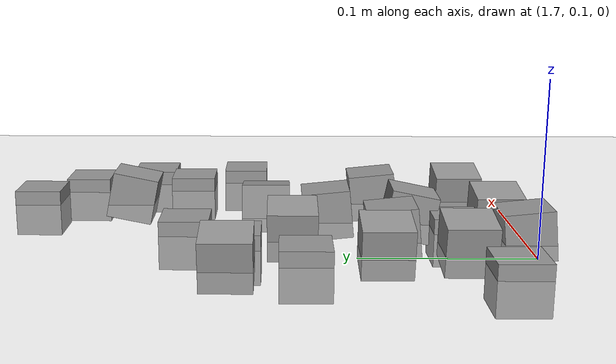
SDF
<sdf version="1.7">
 <world name="default">
  <model name="ground_plane">
   <static>1</static>
   <link name="link">
    <collision name="collision">
     <geometry><plane><normal>0 0 1</normal><size>100 100</size></plane></geometry>
     <surface><friction><ode><mu>100</mu><mu2>50</mu2></ode></friction></surface>
    </collision>
    <visual name="visual">
     <cast_shadows>0</cast_shadows>
     <geometry><plane><normal>0 0 1</normal><size>100 100</size></plane></geometry>
     <material>
      <script><uri>file://media/materials/scripts/gazebo.material</uri><name>Gazebo/Grey</name></script>
     </material>
    </visual>
   </link>
  </model>
  <model name="stone_road">
   <link name="link_0_clone_2_clone_2">
    <inertial>
     <mass>1</mass>
     <inertia>
      <ixx>0.166667</ixx>
      <ixy>0</ixy>
      <ixz>0</ixz>
      <iyy>0.166667</iyy>
      <iyz>0</iyz>
      <izz>0.166667</izz>
     </inertia>
    </inertial>
    <pose>0.066563 0.110568 0.003778 0 -0.15 0</pose>
    <kinematic>1</kinematic>
    <visual name="visual">
     <geometry><box><size>0.03 0.03 0.03</size></box></geometry>
     <material>
      <lighting>1</lighting>
      <script><uri>file://media/materials/scripts/gazebo.material</uri><name>Gazebo/Grey</name></script>
      <shader type="pixel"><normal_map>__default__</normal_map></shader>
      <ambient>0.3 0.3 0.3 1</ambient>
      <diffuse>0.7 0.7 0.7 1</diffuse>
      <specular>0.01 0.01 0.01 1</specular>
      <emissive>0 0 0 1</emissive>
     </material>
    </visual>
    <collision name="collision">
     <geometry><box><size>0.03 0.03 0.03</size></box></geometry>
     <surface>
      <friction>
       <ode><mu>1</mu><mu2>1</mu2><fdir1>0 0 0</fdir1><slip1>0</slip1><slip2>0</slip2></ode>
       <torsional>
        <coefficient>1</coefficient>
        <patch_radius>0</patch_radius>
        <surface_radius>0</surface_radius>
        <use_patch_radius>1</use_patch_radius>
        <ode><slip>0</slip></ode>
       </torsional>
      </friction>
      <bounce><restitution_coefficient>0</restitution_coefficient><threshold>1e+06</threshold></bounce>
      <contact>
       <collide_without_contact>0</collide_without_contact>
       <collide_without_contact_bitmask>1</collide_without_contact_bitmask>
       <collide_bitmask>1</collide_bitmask>
       <ode>
        <soft_cfm>0</soft_cfm>
        <soft_erp>0.2</soft_erp>
        <kp>1e+13</kp>
        <kd>1</kd>
        <max_vel>0.01</max_vel>
        <min_depth>0</min_depth>
       </ode>
       <bullet>
        <split_impulse>1</split_impulse>
        <split_impulse_penetration_threshold>-0.01</split_impulse_penetration_threshold>
        <soft_cfm>0</soft_cfm>
        <soft_erp>0.2</soft_erp>
        <kp>1e+13</kp>
        <kd>1</kd>
       </bullet>
      </contact>
     </surface>
    </collision>
   </link>
   <link name="link_0_clone_2_clone_2_clone">
    <inertial>
     <mass>1</mass>
     <inertia>
      <ixx>0.166667</ixx>
      <ixy>0</ixy>
      <ixz>0</ixz>
      <iyy>0.166667</iyy>
      <iyz>0</iyz>
      <izz>0.166667</izz>
     </inertia>
    </inertial>
    <pose>0.189059 0.051135 0.003778 0 -0.15 0</pose>
    <kinematic>1</kinematic>
    <visual name="visual">
     <geometry><box><size>0.03 0.03 0.03</size></box></geometry>
     <material>
      <lighting>1</lighting>
      <script><uri>file://media/materials/scripts/gazebo.material</uri><name>Gazebo/Grey</name></script>
      <shader type="pixel"><normal_map>__default__</normal_map></shader>
      <ambient>0.3 0.3 0.3 1</ambient>
      <diffuse>0.7 0.7 0.7 1</diffuse>
      <specular>0.01 0.01 0.01 1</specular>
      <emissive>0 0 0 1</emissive>
     </material>
    </visual>
    <collision name="collision">
     <geometry><box><size>0.03 0.03 0.03</size></box></geometry>
     <surface>
      <friction>
       <ode><mu>1</mu><mu2>1</mu2><fdir1>0 0 0</fdir1><slip1>0</slip1><slip2>0</slip2></ode>
       <torsional>
        <coefficient>1</coefficient>
        <patch_radius>0</patch_radius>
        <surface_radius>0</surface_radius>
        <use_patch_radius>1</use_patch_radius>
        <ode><slip>0</slip></ode>
       </torsional>
      </friction>
      <bounce><restitution_coefficient>0</restitution_coefficient><threshold>1e+06</threshold></bounce>
      <contact>
       <collide_without_contact>0</collide_without_contact>
       <collide_without_contact_bitmask>1</collide_without_contact_bitmask>
       <collide_bitmask>1</collide_bitmask>
       <ode>
        <soft_cfm>0</soft_cfm>
        <soft_erp>0.2</soft_erp>
        <kp>1e+13</kp>
        <kd>1</kd>
        <max_vel>0.01</max_vel>
        <min_depth>0</min_depth>
       </ode>
       <bullet>
        <split_impulse>1</split_impulse>
        <split_impulse_penetration_threshold>-0.01</split_impulse_penetration_threshold>
        <soft_cfm>0</soft_cfm>
        <soft_erp>0.2</soft_erp>
        <kp>1e+13</kp>
        <kd>1</kd>
       </bullet>
      </contact>
     </surface>
    </collision>
   </link>
   <link name="link_0_clone_2_clone_2_clone_10">
    <inertial>
     <mass>1</mass>
     <inertia>
      <ixx>0.166667</ixx>
      <ixy>0</ixy>
      <ixz>0</ixz>
      <iyy>0.166667</iyy>
      <iyz>0</iyz>
      <izz>0.166667</izz>
     </inertia>
    </inertial>
    <pose>0.09869 0.163436 0.003778 0 -0.15 0</pose>
    <kinematic>1</kinematic>
    <visual name="visual">
     <geometry><box><size>0.03 0.03 0.03</size></box></geometry>
     <material>
      <lighting>1</lighting>
      <script><uri>file://media/materials/scripts/gazebo.material</uri><name>Gazebo/Grey</name></script>
      <shader type="pixel"><normal_map>__default__</normal_map></shader>
      <ambient>0.3 0.3 0.3 1</ambient>
      <diffuse>0.7 0.7 0.7 1</diffuse>
      <specular>0.01 0.01 0.01 1</specular>
      <emissive>0 0 0 1</emissive>
     </material>
    </visual>
    <collision name="collision">
     <geometry><box><size>0.03 0.03 0.03</size></box></geometry>
     <surface>
      <friction>
       <ode><mu>1</mu><mu2>1</mu2><fdir1>0 0 0</fdir1><slip1>0</slip1><slip2>0</slip2></ode>
       <torsional>
        <coefficient>1</coefficient>
        <patch_radius>0</patch_radius>
        <surface_radius>0</surface_radius>
        <use_patch_radius>1</use_patch_radius>
        <ode><slip>0</slip></ode>
       </torsional>
      </friction>
      <bounce><restitution_coefficient>0</restitution_coefficient><threshold>1e+06</threshold></bounce>
      <contact>
       <collide_without_contact>0</collide_without_contact>
       <collide_without_contact_bitmask>1</collide_without_contact_bitmask>
       <collide_bitmask>1</collide_bitmask>
       <ode>
        <soft_cfm>0</soft_cfm>
        <soft_erp>0.2</soft_erp>
        <kp>1e+13</kp>
        <kd>1</kd>
        <max_vel>0.01</max_vel>
        <min_depth>0</min_depth>
       </ode>
       <bullet>
        <split_impulse>1</split_impulse>
        <split_impulse_penetration_threshold>-0.01</split_impulse_penetration_threshold>
        <soft_cfm>0</soft_cfm>
        <soft_erp>0.2</soft_erp>
        <kp>1e+13</kp>
        <kd>1</kd>
       </bullet>
      </contact>
     </surface>
    </collision>
   </link>
   <link name="link_0_clone_2_clone_2_clone_12">
    <inertial>
     <mass>1</mass>
     <inertia>
      <ixx>0.166667</ixx>
      <ixy>0</ixy>
      <ixz>0</ixz>
      <iyy>0.166667</iyy>
      <iyz>0</iyz>
      <izz>0.166667</izz>
     </inertia>
    </inertial>
    <pose>0.044693 0.200081 0.003778 0 -0.15 0</pose>
    <kinematic>1</kinematic>
    <visual name="visual">
     <geometry><box><size>0.03 0.03 0.03</size></box></geometry>
     <material>
      <lighting>1</lighting>
      <script><uri>file://media/materials/scripts/gazebo.material</uri><name>Gazebo/Grey</name></script>
      <shader type="pixel"><normal_map>__default__</normal_map></shader>
      <ambient>0.3 0.3 0.3 1</ambient>
      <diffuse>0.7 0.7 0.7 1</diffuse>
      <specular>0.01 0.01 0.01 1</specular>
      <emissive>0 0 0 1</emissive>
     </material>
    </visual>
    <collision name="collision">
     <geometry><box><size>0.03 0.03 0.03</size></box></geometry>
     <surface>
      <friction>
       <ode><mu>1</mu><mu2>1</mu2><fdir1>0 0 0</fdir1><slip1>0</slip1><slip2>0</slip2></ode>
       <torsional>
        <coefficient>1</coefficient>
        <patch_radius>0</patch_radius>
        <surface_radius>0</surface_radius>
        <use_patch_radius>1</use_patch_radius>
        <ode><slip>0</slip></ode>
       </torsional>
      </friction>
      <bounce><restitution_coefficient>0</restitution_coefficient><threshold>1e+06</threshold></bounce>
      <contact>
       <collide_without_contact>0</collide_without_contact>
       <collide_without_contact_bitmask>1</collide_without_contact_bitmask>
       <collide_bitmask>1</collide_bitmask>
       <ode>
        <soft_cfm>0</soft_cfm>
        <soft_erp>0.2</soft_erp>
        <kp>1e+13</kp>
        <kd>1</kd>
        <max_vel>0.01</max_vel>
        <min_depth>0</min_depth>
       </ode>
       <bullet>
        <split_impulse>1</split_impulse>
        <split_impulse_penetration_threshold>-0.01</split_impulse_penetration_threshold>
        <soft_cfm>0</soft_cfm>
        <soft_erp>0.2</soft_erp>
        <kp>1e+13</kp>
        <kd>1</kd>
       </bullet>
      </contact>
     </surface>
    </collision>
   </link>
   <link name="link_0_clone_2_clone_2_clone_13_clone">
    <inertial>
     <mass>1</mass>
     <inertia>
      <ixx>0.166667</ixx>
      <ixy>0</ixy>
      <ixz>0</ixz>
      <iyy>0.166667</iyy>
      <iyz>0</iyz>
      <izz>0.166667</izz>
     </inertia>
    </inertial>
    <pose>0.138846 0.140956 0.003778 -0.1 0 0</pose>
    <kinematic>1</kinematic>
    <visual name="visual">
     <geometry><box><size>0.03 0.03 0.03</size></box></geometry>
     <material>
      <lighting>1</lighting>
      <script><uri>file://media/materials/scripts/gazebo.material</uri><name>Gazebo/Grey</name></script>
      <shader type="pixel"><normal_map>__default__</normal_map></shader>
      <ambient>0.3 0.3 0.3 1</ambient>
      <diffuse>0.7 0.7 0.7 1</diffuse>
      <specular>0.01 0.01 0.01 1</specular>
      <emissive>0 0 0 1</emissive>
     </material>
    </visual>
    <collision name="collision">
     <geometry><box><size>0.03 0.03 0.03</size></box></geometry>
     <surface>
      <friction>
       <ode><mu>1</mu><mu2>1</mu2><fdir1>0 0 0</fdir1><slip1>0</slip1><slip2>0</slip2></ode>
       <torsional>
        <coefficient>1</coefficient>
        <patch_radius>0</patch_radius>
        <surface_radius>0</surface_radius>
        <use_patch_radius>1</use_patch_radius>
        <ode><slip>0</slip></ode>
       </torsional>
      </friction>
      <bounce><restitution_coefficient>0</restitution_coefficient><threshold>1e+06</threshold></bounce>
      <contact>
       <collide_without_contact>0</collide_without_contact>
       <collide_without_contact_bitmask>1</collide_without_contact_bitmask>
       <collide_bitmask>1</collide_bitmask>
       <ode>
        <soft_cfm>0</soft_cfm>
        <soft_erp>0.2</soft_erp>
        <kp>1e+13</kp>
        <kd>1</kd>
        <max_vel>0.01</max_vel>
        <min_depth>0</min_depth>
       </ode>
       <bullet>
        <split_impulse>1</split_impulse>
        <split_impulse_penetration_threshold>-0.01</split_impulse_penetration_threshold>
        <soft_cfm>0</soft_cfm>
        <soft_erp>0.2</soft_erp>
        <kp>1e+13</kp>
        <kd>1</kd>
       </bullet>
      </contact>
     </surface>
    </collision>
   </link>
   <link name="link_0_clone_2_clone_2_clone_13_clone_clone">
    <inertial>
     <mass>1</mass>
     <inertia>
      <ixx>0.166667</ixx>
      <ixy>0</ixy>
      <ixz>0</ixz>
      <iyy>0.166667</iyy>
      <iyz>0</iyz>
      <izz>0.166667</izz>
     </inertia>
    </inertial>
    <pose>0.184456 0.108712 0.003778 -0.1 0 0</pose>
    <kinematic>1</kinematic>
    <visual name="visual">
     <geometry><box><size>0.03 0.03 0.03</size></box></geometry>
     <material>
      <lighting>1</lighting>
      <script><uri>file://media/materials/scripts/gazebo.material</uri><name>Gazebo/Grey</name></script>
      <shader type="pixel"><normal_map>__default__</normal_map></shader>
      <ambient>0.3 0.3 0.3 1</ambient>
      <diffuse>0.7 0.7 0.7 1</diffuse>
      <specular>0.01 0.01 0.01 1</specular>
      <emissive>0 0 0 1</emissive>
     </material>
    </visual>
    <collision name="collision">
     <geometry><box><size>0.03 0.03 0.03</size></box></geometry>
     <surface>
      <friction>
       <ode><mu>1</mu><mu2>1</mu2><fdir1>0 0 0</fdir1><slip1>0</slip1><slip2>0</slip2></ode>
       <torsional>
        <coefficient>1</coefficient>
        <patch_radius>0</patch_radius>
        <surface_radius>0</surface_radius>
        <use_patch_radius>1</use_patch_radius>
        <ode><slip>0</slip></ode>
       </torsional>
      </friction>
      <bounce><restitution_coefficient>0</restitution_coefficient><threshold>1e+06</threshold></bounce>
      <contact>
       <collide_without_contact>0</collide_without_contact>
       <collide_without_contact_bitmask>1</collide_without_contact_bitmask>
       <collide_bitmask>1</collide_bitmask>
       <ode>
        <soft_cfm>0</soft_cfm>
        <soft_erp>0.2</soft_erp>
        <kp>1e+13</kp>
        <kd>1</kd>
        <max_vel>0.01</max_vel>
        <min_depth>0</min_depth>
       </ode>
       <bullet>
        <split_impulse>1</split_impulse>
        <split_impulse_penetration_threshold>-0.01</split_impulse_penetration_threshold>
        <soft_cfm>0</soft_cfm>
        <soft_erp>0.2</soft_erp>
        <kp>1e+13</kp>
        <kd>1</kd>
       </bullet>
      </contact>
     </surface>
    </collision>
   </link>
   <link name="link_0_clone_2_clone_2_clone_13_clone_clone_0">
    <inertial>
     <mass>1</mass>
     <inertia>
      <ixx>0.166667</ixx>
      <ixy>0</ixy>
      <ixz>0</ixz>
      <iyy>0.166667</iyy>
      <iyz>0</iyz>
      <izz>0.166667</izz>
     </inertia>
    </inertial>
    <pose>0.094072 0.02539 0.003778 -0.1 0 0</pose>
    <kinematic>1</kinematic>
    <visual name="visual">
     <geometry><box><size>0.03 0.03 0.03</size></box></geometry>
     <material>
      <lighting>1</lighting>
      <script><uri>file://media/materials/scripts/gazebo.material</uri><name>Gazebo/Grey</name></script>
      <shader type="pixel"><normal_map>__default__</normal_map></shader>
      <ambient>0.3 0.3 0.3 1</ambient>
      <diffuse>0.7 0.7 0.7 1</diffuse>
      <specular>0.01 0.01 0.01 1</specular>
      <emissive>0 0 0 1</emissive>
     </material>
    </visual>
    <collision name="collision">
     <geometry><box><size>0.03 0.03 0.03</size></box></geometry>
     <surface>
      <friction>
       <ode><mu>1</mu><mu2>1</mu2><fdir1>0 0 0</fdir1><slip1>0</slip1><slip2>0</slip2></ode>
       <torsional>
        <coefficient>1</coefficient>
        <patch_radius>0</patch_radius>
        <surface_radius>0</surface_radius>
        <use_patch_radius>1</use_patch_radius>
        <ode><slip>0</slip></ode>
       </torsional>
      </friction>
      <bounce><restitution_coefficient>0</restitution_coefficient><threshold>1e+06</threshold></bounce>
      <contact>
       <collide_without_contact>0</collide_without_contact>
       <collide_without_contact_bitmask>1</collide_without_contact_bitmask>
       <collide_bitmask>1</collide_bitmask>
       <ode>
        <soft_cfm>0</soft_cfm>
        <soft_erp>0.2</soft_erp>
        <kp>1e+13</kp>
        <kd>1</kd>
        <max_vel>0.01</max_vel>
        <min_depth>0</min_depth>
       </ode>
       <bullet>
        <split_impulse>1</split_impulse>
        <split_impulse_penetration_threshold>-0.01</split_impulse_penetration_threshold>
        <soft_cfm>0</soft_cfm>
        <soft_erp>0.2</soft_erp>
        <kp>1e+13</kp>
        <kd>1</kd>
       </bullet>
      </contact>
     </surface>
    </collision>
   </link>
   <link name="link_0_clone_2_clone_2_clone_13_clone_clone_1">
    <inertial>
     <mass>1</mass>
     <inertia>
      <ixx>0.166667</ixx>
      <ixy>0</ixy>
      <ixz>0</ixz>
      <iyy>0.166667</iyy>
      <iyz>0</iyz>
      <izz>0.166667</izz>
     </inertia>
    </inertial>
    <pose>0.098415 0.103772 0.003778 -0.1 0 0</pose>
    <kinematic>1</kinematic>
    <visual name="visual">
     <geometry><box><size>0.03 0.03 0.03</size></box></geometry>
     <material>
      <lighting>1</lighting>
      <script><uri>file://media/materials/scripts/gazebo.material</uri><name>Gazebo/Grey</name></script>
      <shader type="pixel"><normal_map>__default__</normal_map></shader>
      <ambient>0.3 0.3 0.3 1</ambient>
      <diffuse>0.7 0.7 0.7 1</diffuse>
      <specular>0.01 0.01 0.01 1</specular>
      <emissive>0 0 0 1</emissive>
     </material>
    </visual>
    <collision name="collision">
     <geometry><box><size>0.03 0.03 0.03</size></box></geometry>
     <surface>
      <friction>
       <ode><mu>1</mu><mu2>1</mu2><fdir1>0 0 0</fdir1><slip1>0</slip1><slip2>0</slip2></ode>
       <torsional>
        <coefficient>1</coefficient>
        <patch_radius>0</patch_radius>
        <surface_radius>0</surface_radius>
        <use_patch_radius>1</use_patch_radius>
        <ode><slip>0</slip></ode>
       </torsional>
      </friction>
      <bounce><restitution_coefficient>0</restitution_coefficient><threshold>1e+06</threshold></bounce>
      <contact>
       <collide_without_contact>0</collide_without_contact>
       <collide_without_contact_bitmask>1</collide_without_contact_bitmask>
       <collide_bitmask>1</collide_bitmask>
       <ode>
        <soft_cfm>0</soft_cfm>
        <soft_erp>0.2</soft_erp>
        <kp>1e+13</kp>
        <kd>1</kd>
        <max_vel>0.01</max_vel>
        <min_depth>0</min_depth>
       </ode>
       <bullet>
        <split_impulse>1</split_impulse>
        <split_impulse_penetration_threshold>-0.01</split_impulse_penetration_threshold>
        <soft_cfm>0</soft_cfm>
        <soft_erp>0.2</soft_erp>
        <kp>1e+13</kp>
        <kd>1</kd>
       </bullet>
      </contact>
     </surface>
    </collision>
   </link>
   <link name="link_0_clone_2_clone_2_clone_13_clone_clone_16">
    <inertial>
     <mass>1</mass>
     <inertia>
      <ixx>0.166667</ixx>
      <ixy>0</ixy>
      <ixz>0</ixz>
      <iyy>0.166667</iyy>
      <iyz>0</iyz>
      <izz>0.166667</izz>
     </inertia>
    </inertial>
    <pose>0.108948 0.22849 -0.006222 0 -0 0</pose>
    <kinematic>1</kinematic>
    <visual name="visual">
     <geometry><box><size>0.03 0.03 0.03</size></box></geometry>
     <material>
      <lighting>1</lighting>
      <script><uri>file://media/materials/scripts/gazebo.material</uri><name>Gazebo/Grey</name></script>
      <shader type="pixel"><normal_map>__default__</normal_map></shader>
      <ambient>0.3 0.3 0.3 1</ambient>
      <diffuse>0.7 0.7 0.7 1</diffuse>
      <specular>0.01 0.01 0.01 1</specular>
      <emissive>0 0 0 1</emissive>
     </material>
    </visual>
    <collision name="collision">
     <geometry><box><size>0.03 0.03 0.03</size></box></geometry>
     <surface>
      <friction>
       <ode><mu>1</mu><mu2>1</mu2><fdir1>0 0 0</fdir1><slip1>0</slip1><slip2>0</slip2></ode>
       <torsional>
        <coefficient>1</coefficient>
        <patch_radius>0</patch_radius>
        <surface_radius>0</surface_radius>
        <use_patch_radius>1</use_patch_radius>
        <ode><slip>0</slip></ode>
       </torsional>
      </friction>
      <bounce><restitution_coefficient>0</restitution_coefficient><threshold>1e+06</threshold></bounce>
      <contact>
       <collide_without_contact>0</collide_without_contact>
       <collide_without_contact_bitmask>1</collide_without_contact_bitmask>
       <collide_bitmask>1</collide_bitmask>
       <ode>
        <soft_cfm>0</soft_cfm>
        <soft_erp>0.2</soft_erp>
        <kp>1e+13</kp>
        <kd>1</kd>
        <max_vel>0.01</max_vel>
        <min_depth>0</min_depth>
       </ode>
       <bullet>
        <split_impulse>1</split_impulse>
        <split_impulse_penetration_threshold>-0.01</split_impulse_penetration_threshold>
        <soft_cfm>0</soft_cfm>
        <soft_erp>0.2</soft_erp>
        <kp>1e+13</kp>
        <kd>1</kd>
       </bullet>
      </contact>
     </surface>
    </collision>
   </link>
   <link name="link_0_clone_2_clone_2_clone_13_clone_clone_16_clone">
    <inertial>
     <mass>1</mass>
     <inertia>
      <ixx>0.166667</ixx>
      <ixy>0</ixy>
      <ixz>0</ixz>
      <iyy>0.166667</iyy>
      <iyz>0</iyz>
      <izz>0.166667</izz>
     </inertia>
    </inertial>
    <pose>0.0535 0.156403 -0.006222 0 -0 0</pose>
    <kinematic>1</kinematic>
    <visual name="visual">
     <geometry><box><size>0.03 0.03 0.03</size></box></geometry>
     <material>
      <lighting>1</lighting>
      <script><uri>file://media/materials/scripts/gazebo.material</uri><name>Gazebo/Grey</name></script>
      <shader type="pixel"><normal_map>__default__</normal_map></shader>
      <ambient>0.3 0.3 0.3 1</ambient>
      <diffuse>0.7 0.7 0.7 1</diffuse>
      <specular>0.01 0.01 0.01 1</specular>
      <emissive>0 0 0 1</emissive>
     </material>
    </visual>
    <collision name="collision">
     <geometry><box><size>0.03 0.03 0.03</size></box></geometry>
     <surface>
      <friction>
       <ode><mu>1</mu><mu2>1</mu2><fdir1>0 0 0</fdir1><slip1>0</slip1><slip2>0</slip2></ode>
       <torsional>
        <coefficient>1</coefficient>
        <patch_radius>0</patch_radius>
        <surface_radius>0</surface_radius>
        <use_patch_radius>1</use_patch_radius>
        <ode><slip>0</slip></ode>
       </torsional>
      </friction>
      <bounce><restitution_coefficient>0</restitution_coefficient><threshold>1e+06</threshold></bounce>
      <contact>
       <collide_without_contact>0</collide_without_contact>
       <collide_without_contact_bitmask>1</collide_without_contact_bitmask>
       <collide_bitmask>1</collide_bitmask>
       <ode>
        <soft_cfm>0</soft_cfm>
        <soft_erp>0.2</soft_erp>
        <kp>1e+13</kp>
        <kd>1</kd>
        <max_vel>0.01</max_vel>
        <min_depth>0</min_depth>
       </ode>
       <bullet>
        <split_impulse>1</split_impulse>
        <split_impulse_penetration_threshold>-0.01</split_impulse_penetration_threshold>
        <soft_cfm>0</soft_cfm>
        <soft_erp>0.2</soft_erp>
        <kp>1e+13</kp>
        <kd>1</kd>
       </bullet>
      </contact>
     </surface>
    </collision>
   </link>
   <link name="link_0_clone_2_clone_2_clone_13_clone_clone_16_clone_1">
    <inertial>
     <mass>1</mass>
     <inertia>
      <ixx>0.166667</ixx>
      <ixy>0</ixy>
      <ixz>0</ixz>
      <iyy>0.166667</iyy>
      <iyz>0</iyz>
      <izz>0.166667</izz>
     </inertia>
    </inertial>
    <pose>0.033787 0.042837 -0.006222 0 -0 0</pose>
    <kinematic>1</kinematic>
    <visual name="visual">
     <geometry><box><size>0.03 0.03 0.03</size></box></geometry>
     <material>
      <lighting>1</lighting>
      <script><uri>file://media/materials/scripts/gazebo.material</uri><name>Gazebo/Grey</name></script>
      <shader type="pixel"><normal_map>__default__</normal_map></shader>
      <ambient>0.3 0.3 0.3 1</ambient>
      <diffuse>0.7 0.7 0.7 1</diffuse>
      <specular>0.01 0.01 0.01 1</specular>
      <emissive>0 0 0 1</emissive>
     </material>
    </visual>
    <collision name="collision">
     <geometry><box><size>0.03 0.03 0.03</size></box></geometry>
     <surface>
      <friction>
       <ode><mu>1</mu><mu2>1</mu2><fdir1>0 0 0</fdir1><slip1>0</slip1><slip2>0</slip2></ode>
       <torsional>
        <coefficient>1</coefficient>
        <patch_radius>0</patch_radius>
        <surface_radius>0</surface_radius>
        <use_patch_radius>1</use_patch_radius>
        <ode><slip>0</slip></ode>
       </torsional>
      </friction>
      <bounce><restitution_coefficient>0</restitution_coefficient><threshold>1e+06</threshold></bounce>
      <contact>
       <collide_without_contact>0</collide_without_contact>
       <collide_without_contact_bitmask>1</collide_without_contact_bitmask>
       <collide_bitmask>1</collide_bitmask>
       <ode>
        <soft_cfm>0</soft_cfm>
        <soft_erp>0.2</soft_erp>
        <kp>1e+13</kp>
        <kd>1</kd>
        <max_vel>0.01</max_vel>
        <min_depth>0</min_depth>
       </ode>
       <bullet>
        <split_impulse>1</split_impulse>
        <split_impulse_penetration_threshold>-0.01</split_impulse_penetration_threshold>
        <soft_cfm>0</soft_cfm>
        <soft_erp>0.2</soft_erp>
        <kp>1e+13</kp>
        <kd>1</kd>
       </bullet>
      </contact>
     </surface>
    </collision>
   </link>
   <link name="link_0_clone_2_clone_2_clone_13_clone_clone_16_clone_20">
    <inertial>
     <mass>1</mass>
     <inertia>
      <ixx>0.166667</ixx>
      <ixy>0</ixy>
      <ixz>0</ixz>
      <iyy>0.166667</iyy>
      <iyz>0</iyz>
      <izz>0.166667</izz>
     </inertia>
    </inertial>
    <pose>0.115763 0.063063 -0.006222 0 -0 0</pose>
    <kinematic>1</kinematic>
    <visual name="visual">
     <geometry><box><size>0.03 0.03 0.03</size></box></geometry>
     <material>
      <lighting>1</lighting>
      <script><uri>file://media/materials/scripts/gazebo.material</uri><name>Gazebo/Grey</name></script>
      <shader type="pixel"><normal_map>__default__</normal_map></shader>
      <ambient>0.3 0.3 0.3 1</ambient>
      <diffuse>0.7 0.7 0.7 1</diffuse>
      <specular>0.01 0.01 0.01 1</specular>
      <emissive>0 0 0 1</emissive>
     </material>
    </visual>
    <collision name="collision">
     <geometry><box><size>0.03 0.03 0.03</size></box></geometry>
     <surface>
      <friction>
       <ode><mu>1</mu><mu2>1</mu2><fdir1>0 0 0</fdir1><slip1>0</slip1><slip2>0</slip2></ode>
       <torsional>
        <coefficient>1</coefficient>
        <patch_radius>0</patch_radius>
        <surface_radius>0</surface_radius>
        <use_patch_radius>1</use_patch_radius>
        <ode><slip>0</slip></ode>
       </torsional>
      </friction>
      <bounce><restitution_coefficient>0</restitution_coefficient><threshold>1e+06</threshold></bounce>
      <contact>
       <collide_without_contact>0</collide_without_contact>
       <collide_without_contact_bitmask>1</collide_without_contact_bitmask>
       <collide_bitmask>1</collide_bitmask>
       <ode>
        <soft_cfm>0</soft_cfm>
        <soft_erp>0.2</soft_erp>
        <kp>1e+13</kp>
        <kd>1</kd>
        <max_vel>0.01</max_vel>
        <min_depth>0</min_depth>
       </ode>
       <bullet>
        <split_impulse>1</split_impulse>
        <split_impulse_penetration_threshold>-0.01</split_impulse_penetration_threshold>
        <soft_cfm>0</soft_cfm>
        <soft_erp>0.2</soft_erp>
        <kp>1e+13</kp>
        <kd>1</kd>
       </bullet>
      </contact>
     </surface>
    </collision>
   </link>
   <link name="link_0_clone_2_clone_2_clone_13_clone_clone_16_clone_24">
    <inertial>
     <mass>1</mass>
     <inertia>
      <ixx>0.166667</ixx>
      <ixy>0</ixy>
      <ixz>0</ixz>
      <iyy>0.166667</iyy>
      <iyz>0</iyz>
      <izz>0.166667</izz>
     </inertia>
    </inertial>
    <pose>0.08246 0.196776 -0.006222 0 -0 0</pose>
    <kinematic>1</kinematic>
    <visual name="visual">
     <geometry><box><size>0.03 0.03 0.03</size></box></geometry>
     <material>
      <lighting>1</lighting>
      <script><uri>file://media/materials/scripts/gazebo.material</uri><name>Gazebo/Grey</name></script>
      <shader type="pixel"><normal_map>__default__</normal_map></shader>
      <ambient>0.3 0.3 0.3 1</ambient>
      <diffuse>0.7 0.7 0.7 1</diffuse>
      <specular>0.01 0.01 0.01 1</specular>
      <emissive>0 0 0 1</emissive>
     </material>
    </visual>
    <collision name="collision">
     <geometry><box><size>0.03 0.03 0.03</size></box></geometry>
     <surface>
      <friction>
       <ode><mu>1</mu><mu2>1</mu2><fdir1>0 0 0</fdir1><slip1>0</slip1><slip2>0</slip2></ode>
       <torsional>
        <coefficient>1</coefficient>
        <patch_radius>0</patch_radius>
        <surface_radius>0</surface_radius>
        <use_patch_radius>1</use_patch_radius>
        <ode><slip>0</slip></ode>
       </torsional>
      </friction>
      <bounce><restitution_coefficient>0</restitution_coefficient><threshold>1e+06</threshold></bounce>
      <contact>
       <collide_without_contact>0</collide_without_contact>
       <collide_without_contact_bitmask>1</collide_without_contact_bitmask>
       <collide_bitmask>1</collide_bitmask>
       <ode>
        <soft_cfm>0</soft_cfm>
        <soft_erp>0.2</soft_erp>
        <kp>1e+13</kp>
        <kd>1</kd>
        <max_vel>0.01</max_vel>
        <min_depth>0</min_depth>
       </ode>
       <bullet>
        <split_impulse>1</split_impulse>
        <split_impulse_penetration_threshold>-0.01</split_impulse_penetration_threshold>
        <soft_cfm>0</soft_cfm>
        <soft_erp>0.2</soft_erp>
        <kp>1e+13</kp>
        <kd>1</kd>
       </bullet>
      </contact>
     </surface>
    </collision>
   </link>
   <link name="link_0_clone_2_clone_2_clone_6">
    <inertial>
     <mass>1</mass>
     <inertia>
      <ixx>0.166667</ixx>
      <ixy>0</ixy>
      <ixz>0</ixz>
      <iyy>0.166667</iyy>
      <iyz>0</iyz>
      <izz>0.166667</izz>
     </inertia>
    </inertial>
    <pose>0.136141 0.034017 0.003778 0 -0.15 0</pose>
    <kinematic>1</kinematic>
    <visual name="visual">
     <geometry><box><size>0.03 0.03 0.03</size></box></geometry>
     <material>
      <lighting>1</lighting>
      <script><uri>file://media/materials/scripts/gazebo.material</uri><name>Gazebo/Grey</name></script>
      <shader type="pixel"><normal_map>__default__</normal_map></shader>
      <ambient>0.3 0.3 0.3 1</ambient>
      <diffuse>0.7 0.7 0.7 1</diffuse>
      <specular>0.01 0.01 0.01 1</specular>
      <emissive>0 0 0 1</emissive>
     </material>
    </visual>
    <collision name="collision">
     <geometry><box><size>0.03 0.03 0.03</size></box></geometry>
     <surface>
      <friction>
       <ode><mu>1</mu><mu2>1</mu2><fdir1>0 0 0</fdir1><slip1>0</slip1><slip2>0</slip2></ode>
       <torsional>
        <coefficient>1</coefficient>
        <patch_radius>0</patch_radius>
        <surface_radius>0</surface_radius>
        <use_patch_radius>1</use_patch_radius>
        <ode><slip>0</slip></ode>
       </torsional>
      </friction>
      <bounce><restitution_coefficient>0</restitution_coefficient><threshold>1e+06</threshold></bounce>
      <contact>
       <collide_without_contact>0</collide_without_contact>
       <collide_without_contact_bitmask>1</collide_without_contact_bitmask>
       <collide_bitmask>1</collide_bitmask>
       <ode>
        <soft_cfm>0</soft_cfm>
        <soft_erp>0.2</soft_erp>
        <kp>1e+13</kp>
        <kd>1</kd>
        <max_vel>0.01</max_vel>
        <min_depth>0</min_depth>
       </ode>
       <bullet>
        <split_impulse>1</split_impulse>
        <split_impulse_penetration_threshold>-0.01</split_impulse_penetration_threshold>
        <soft_cfm>0</soft_cfm>
        <soft_erp>0.2</soft_erp>
        <kp>1e+13</kp>
        <kd>1</kd>
       </bullet>
      </contact>
     </surface>
    </collision>
   </link>
   <link name="link_0_clone_2_clone_2_clone_9">
    <inertial>
     <mass>1</mass>
     <inertia>
      <ixx>0.166667</ixx>
      <ixy>0</ixy>
      <ixz>0</ixz>
      <iyy>0.166667</iyy>
      <iyz>0</iyz>
      <izz>0.166667</izz>
     </inertia>
    </inertial>
    <pose>0.071478 0.063212 0.003778 0 -0.15 0</pose>
    <kinematic>1</kinematic>
    <visual name="visual">
     <geometry><box><size>0.03 0.03 0.03</size></box></geometry>
     <material>
      <lighting>1</lighting>
      <script><uri>file://media/materials/scripts/gazebo.material</uri><name>Gazebo/Grey</name></script>
      <shader type="pixel"><normal_map>__default__</normal_map></shader>
      <ambient>0.3 0.3 0.3 1</ambient>
      <diffuse>0.7 0.7 0.7 1</diffuse>
      <specular>0.01 0.01 0.01 1</specular>
      <emissive>0 0 0 1</emissive>
     </material>
    </visual>
    <collision name="collision">
     <geometry><box><size>0.03 0.03 0.03</size></box></geometry>
     <surface>
      <friction>
       <ode><mu>1</mu><mu2>1</mu2><fdir1>0 0 0</fdir1><slip1>0</slip1><slip2>0</slip2></ode>
       <torsional>
        <coefficient>1</coefficient>
        <patch_radius>0</patch_radius>
        <surface_radius>0</surface_radius>
        <use_patch_radius>1</use_patch_radius>
        <ode><slip>0</slip></ode>
       </torsional>
      </friction>
      <bounce><restitution_coefficient>0</restitution_coefficient><threshold>1e+06</threshold></bounce>
      <contact>
       <collide_without_contact>0</collide_without_contact>
       <collide_without_contact_bitmask>1</collide_without_contact_bitmask>
       <collide_bitmask>1</collide_bitmask>
       <ode>
        <soft_cfm>0</soft_cfm>
        <soft_erp>0.2</soft_erp>
        <kp>1e+13</kp>
        <kd>1</kd>
        <max_vel>0.01</max_vel>
        <min_depth>0</min_depth>
       </ode>
       <bullet>
        <split_impulse>1</split_impulse>
        <split_impulse_penetration_threshold>-0.01</split_impulse_penetration_threshold>
        <soft_cfm>0</soft_cfm>
        <soft_erp>0.2</soft_erp>
        <kp>1e+13</kp>
        <kd>1</kd>
       </bullet>
      </contact>
     </surface>
    </collision>
   </link>
   <link name="link_0_clone_2_clone_9">
    <inertial>
     <mass>1</mass>
     <inertia>
      <ixx>0.166667</ixx>
      <ixy>0</ixy>
      <ixz>0</ixz>
      <iyy>0.166667</iyy>
      <iyz>0</iyz>
      <izz>0.166667</izz>
     </inertia>
    </inertial>
    <pose>0.148876 0.179752 0.003778 0 0.15 0</pose>
    <kinematic>1</kinematic>
    <visual name="visual">
     <geometry><box><size>0.03 0.03 0.03</size></box></geometry>
     <material>
      <lighting>1</lighting>
      <script><uri>file://media/materials/scripts/gazebo.material</uri><name>Gazebo/Grey</name></script>
      <shader type="pixel"><normal_map>__default__</normal_map></shader>
      <ambient>0.3 0.3 0.3 1</ambient>
      <diffuse>0.7 0.7 0.7 1</diffuse>
      <specular>0.01 0.01 0.01 1</specular>
      <emissive>0 0 0 1</emissive>
     </material>
    </visual>
    <collision name="collision">
     <geometry><box><size>0.03 0.03 0.03</size></box></geometry>
     <surface>
      <friction>
       <ode><mu>1</mu><mu2>1</mu2><fdir1>0 0 0</fdir1><slip1>0</slip1><slip2>0</slip2></ode>
       <torsional>
        <coefficient>1</coefficient>
        <patch_radius>0</patch_radius>
        <surface_radius>0</surface_radius>
        <use_patch_radius>1</use_patch_radius>
        <ode><slip>0</slip></ode>
       </torsional>
      </friction>
      <bounce><restitution_coefficient>0</restitution_coefficient><threshold>1e+06</threshold></bounce>
      <contact>
       <collide_without_contact>0</collide_without_contact>
       <collide_without_contact_bitmask>1</collide_without_contact_bitmask>
       <collide_bitmask>1</collide_bitmask>
       <ode>
        <soft_cfm>0</soft_cfm>
        <soft_erp>0.2</soft_erp>
        <kp>1e+13</kp>
        <kd>1</kd>
        <max_vel>0.01</max_vel>
        <min_depth>0</min_depth>
       </ode>
       <bullet>
        <split_impulse>1</split_impulse>
        <split_impulse_penetration_threshold>-0.01</split_impulse_penetration_threshold>
        <soft_cfm>0</soft_cfm>
        <soft_erp>0.2</soft_erp>
        <kp>1e+13</kp>
        <kd>1</kd>
       </bullet>
      </contact>
     </surface>
    </collision>
   </link>
   <link name="link_0_clone_8">
    <inertial>
     <mass>1</mass>
     <inertia>
      <ixx>0.166667</ixx>
      <ixy>0</ixy>
      <ixz>0</ixz>
      <iyy>0.166667</iyy>
      <iyz>0</iyz>
      <izz>0.166667</izz>
     </inertia>
    </inertial>
    <pose>0.135749 0.089175 0.003778 0.2 -0 0</pose>
    <kinematic>1</kinematic>
    <visual name="visual">
     <geometry><box><size>0.03 0.03 0.03</size></box></geometry>
     <material>
      <lighting>1</lighting>
      <script><uri>file://media/materials/scripts/gazebo.material</uri><name>Gazebo/Grey</name></script>
      <shader type="pixel"><normal_map>__default__</normal_map></shader>
      <ambient>0.3 0.3 0.3 1</ambient>
      <diffuse>0.7 0.7 0.7 1</diffuse>
      <specular>0.01 0.01 0.01 1</specular>
      <emissive>0 0 0 1</emissive>
     </material>
    </visual>
    <collision name="collision">
     <geometry><box><size>0.03 0.03 0.03</size></box></geometry>
     <surface>
      <friction>
       <ode><mu>1</mu><mu2>1</mu2><fdir1>0 0 0</fdir1><slip1>0</slip1><slip2>0</slip2></ode>
       <torsional>
        <coefficient>1</coefficient>
        <patch_radius>0</patch_radius>
        <surface_radius>0</surface_radius>
        <use_patch_radius>1</use_patch_radius>
        <ode><slip>0</slip></ode>
       </torsional>
      </friction>
      <bounce><restitution_coefficient>0</restitution_coefficient><threshold>1e+06</threshold></bounce>
      <contact>
       <collide_without_contact>0</collide_without_contact>
       <collide_without_contact_bitmask>1</collide_without_contact_bitmask>
       <collide_bitmask>1</collide_bitmask>
       <ode>
        <soft_cfm>0</soft_cfm>
        <soft_erp>0.2</soft_erp>
        <kp>1e+13</kp>
        <kd>1</kd>
        <max_vel>0.01</max_vel>
        <min_depth>0</min_depth>
       </ode>
       <bullet>
        <split_impulse>1</split_impulse>
        <split_impulse_penetration_threshold>-0.01</split_impulse_penetration_threshold>
        <soft_cfm>0</soft_cfm>
        <soft_erp>0.2</soft_erp>
        <kp>1e+13</kp>
        <kd>1</kd>
       </bullet>
      </contact>
     </surface>
    </collision>
   </link>
   <static>0</static>
   <pose>1.64646 0.071889 -0 0 -0 0</pose>
  </model>
  <model name="stone_road_3">
   <link name="link_0_clone_2_clone_2_clone_13_clone_clone_16_clone_11">
    <inertial>
     <mass>1</mass>
     <inertia>
      <ixx>0.166667</ixx>
      <ixy>0</ixy>
      <ixz>0</ixz>
      <iyy>0.166667</iyy>
      <iyz>0</iyz>
      <izz>0.166667</izz>
     </inertia>
    </inertial>
    <pose>-0.141844 -0.066911 -0.006222 0 -0 0</pose>
    <kinematic>1</kinematic>
    <visual name="visual">
     <geometry><box><size>0.03 0.03 0.03</size></box></geometry>
     <material>
      <lighting>1</lighting>
      <script><uri>file://media/materials/scripts/gazebo.material</uri><name>Gazebo/Grey</name></script>
      <shader type="pixel"><normal_map>__default__</normal_map></shader>
      <ambient>0.3 0.3 0.3 1</ambient>
      <diffuse>0.7 0.7 0.7 1</diffuse>
      <specular>0.01 0.01 0.01 1</specular>
      <emissive>0 0 0 1</emissive>
     </material>
    </visual>
    <collision name="collision">
     <geometry><box><size>0.03 0.03 0.03</size></box></geometry>
     <surface>
      <friction>
       <ode><mu>1</mu><mu2>1</mu2><fdir1>0 0 0</fdir1><slip1>0</slip1><slip2>0</slip2></ode>
       <torsional>
        <coefficient>1</coefficient>
        <patch_radius>0</patch_radius>
        <surface_radius>0</surface_radius>
        <use_patch_radius>1</use_patch_radius>
        <ode><slip>0</slip></ode>
       </torsional>
      </friction>
      <bounce><restitution_coefficient>0</restitution_coefficient><threshold>1e+06</threshold></bounce>
      <contact>
       <collide_without_contact>0</collide_without_contact>
       <collide_without_contact_bitmask>1</collide_without_contact_bitmask>
       <collide_bitmask>1</collide_bitmask>
       <ode>
        <soft_cfm>0</soft_cfm>
        <soft_erp>0.2</soft_erp>
        <kp>1e+13</kp>
        <kd>1</kd>
        <max_vel>0.01</max_vel>
        <min_depth>0</min_depth>
       </ode>
       <bullet>
        <split_impulse>1</split_impulse>
        <split_impulse_penetration_threshold>-0.01</split_impulse_penetration_threshold>
        <soft_cfm>0</soft_cfm>
        <soft_erp>0.2</soft_erp>
        <kp>1e+13</kp>
        <kd>1</kd>
       </bullet>
      </contact>
     </surface>
    </collision>
   </link>
   <link name="link_0_clone_2_clone_2_clone_13_clone_clone_16_clone_12">
    <inertial>
     <mass>1</mass>
     <inertia>
      <ixx>0.166667</ixx>
      <ixy>0</ixy>
      <ixz>0</ixz>
      <iyy>0.166667</iyy>
      <iyz>0</iyz>
      <izz>0.166667</izz>
     </inertia>
    </inertial>
    <pose>-0.164908 -0.022947 -0.006222 0 -0 0</pose>
    <kinematic>1</kinematic>
    <visual name="visual">
     <geometry><box><size>0.03 0.03 0.03</size></box></geometry>
     <material>
      <lighting>1</lighting>
      <script><uri>file://media/materials/scripts/gazebo.material</uri><name>Gazebo/Grey</name></script>
      <shader type="pixel"><normal_map>__default__</normal_map></shader>
      <ambient>0.3 0.3 0.3 1</ambient>
      <diffuse>0.7 0.7 0.7 1</diffuse>
      <specular>0.01 0.01 0.01 1</specular>
      <emissive>0 0 0 1</emissive>
     </material>
    </visual>
    <collision name="collision">
     <geometry><box><size>0.03 0.03 0.03</size></box></geometry>
     <surface>
      <friction>
       <ode><mu>1</mu><mu2>1</mu2><fdir1>0 0 0</fdir1><slip1>0</slip1><slip2>0</slip2></ode>
       <torsional>
        <coefficient>1</coefficient>
        <patch_radius>0</patch_radius>
        <surface_radius>0</surface_radius>
        <use_patch_radius>1</use_patch_radius>
        <ode><slip>0</slip></ode>
       </torsional>
      </friction>
      <bounce><restitution_coefficient>0</restitution_coefficient><threshold>1e+06</threshold></bounce>
      <contact>
       <collide_without_contact>0</collide_without_contact>
       <collide_without_contact_bitmask>1</collide_without_contact_bitmask>
       <collide_bitmask>1</collide_bitmask>
       <ode>
        <soft_cfm>0</soft_cfm>
        <soft_erp>0.2</soft_erp>
        <kp>1e+13</kp>
        <kd>1</kd>
        <max_vel>0.01</max_vel>
        <min_depth>0</min_depth>
       </ode>
       <bullet>
        <split_impulse>1</split_impulse>
        <split_impulse_penetration_threshold>-0.01</split_impulse_penetration_threshold>
        <soft_cfm>0</soft_cfm>
        <soft_erp>0.2</soft_erp>
        <kp>1e+13</kp>
        <kd>1</kd>
       </bullet>
      </contact>
     </surface>
    </collision>
   </link>
   <link name="link_0_clone_2_clone_2_clone_13_clone_clone_16_clone_27">
    <inertial>
     <mass>1</mass>
     <inertia>
      <ixx>0.166667</ixx>
      <ixy>0</ixy>
      <ixz>0</ixz>
      <iyy>0.166667</iyy>
      <iyz>0</iyz>
      <izz>0.166667</izz>
     </inertia>
    </inertial>
    <pose>-0.137316 -0.132225 -0.006222 0 -0 0</pose>
    <kinematic>1</kinematic>
    <visual name="visual">
     <geometry><box><size>0.03 0.03 0.03</size></box></geometry>
     <material>
      <lighting>1</lighting>
      <script><uri>file://media/materials/scripts/gazebo.material</uri><name>Gazebo/Grey</name></script>
      <shader type="pixel"><normal_map>__default__</normal_map></shader>
      <ambient>0.3 0.3 0.3 1</ambient>
      <diffuse>0.7 0.7 0.7 1</diffuse>
      <specular>0.01 0.01 0.01 1</specular>
      <emissive>0 0 0 1</emissive>
     </material>
    </visual>
    <collision name="collision">
     <geometry><box><size>0.03 0.03 0.03</size></box></geometry>
     <surface>
      <friction>
       <ode><mu>1</mu><mu2>1</mu2><fdir1>0 0 0</fdir1><slip1>0</slip1><slip2>0</slip2></ode>
       <torsional>
        <coefficient>1</coefficient>
        <patch_radius>0</patch_radius>
        <surface_radius>0</surface_radius>
        <use_patch_radius>1</use_patch_radius>
        <ode><slip>0</slip></ode>
       </torsional>
      </friction>
      <bounce><restitution_coefficient>0</restitution_coefficient><threshold>1e+06</threshold></bounce>
      <contact>
       <collide_without_contact>0</collide_without_contact>
       <collide_without_contact_bitmask>1</collide_without_contact_bitmask>
       <collide_bitmask>1</collide_bitmask>
       <ode>
        <soft_cfm>0</soft_cfm>
        <soft_erp>0.2</soft_erp>
        <kp>1e+13</kp>
        <kd>1</kd>
        <max_vel>0.01</max_vel>
        <min_depth>0</min_depth>
       </ode>
       <bullet>
        <split_impulse>1</split_impulse>
        <split_impulse_penetration_threshold>-0.01</split_impulse_penetration_threshold>
        <soft_cfm>0</soft_cfm>
        <soft_erp>0.2</soft_erp>
        <kp>1e+13</kp>
        <kd>1</kd>
       </bullet>
      </contact>
     </surface>
    </collision>
   </link>
   <link name="link_0_clone_2_clone_2_clone_13_clone_clone_16_clone_30">
    <inertial>
     <mass>1</mass>
     <inertia>
      <ixx>0.166667</ixx>
      <ixy>0</ixy>
      <ixz>0</ixz>
      <iyy>0.166667</iyy>
      <iyz>0</iyz>
      <izz>0.166667</izz>
     </inertia>
    </inertial>
    <pose>-0.160879 -0.095951 -0.006222 0 -0 0</pose>
    <kinematic>1</kinematic>
    <visual name="visual">
     <geometry><box><size>0.03 0.03 0.03</size></box></geometry>
     <material>
      <lighting>1</lighting>
      <script><uri>file://media/materials/scripts/gazebo.material</uri><name>Gazebo/Grey</name></script>
      <shader type="pixel"><normal_map>__default__</normal_map></shader>
      <ambient>0.3 0.3 0.3 1</ambient>
      <diffuse>0.7 0.7 0.7 1</diffuse>
      <specular>0.01 0.01 0.01 1</specular>
      <emissive>0 0 0 1</emissive>
     </material>
    </visual>
    <collision name="collision">
     <geometry><box><size>0.03 0.03 0.03</size></box></geometry>
     <surface>
      <friction>
       <ode><mu>1</mu><mu2>1</mu2><fdir1>0 0 0</fdir1><slip1>0</slip1><slip2>0</slip2></ode>
       <torsional>
        <coefficient>1</coefficient>
        <patch_radius>0</patch_radius>
        <surface_radius>0</surface_radius>
        <use_patch_radius>1</use_patch_radius>
        <ode><slip>0</slip></ode>
       </torsional>
      </friction>
      <bounce><restitution_coefficient>0</restitution_coefficient><threshold>1e+06</threshold></bounce>
      <contact>
       <collide_without_contact>0</collide_without_contact>
       <collide_without_contact_bitmask>1</collide_without_contact_bitmask>
       <collide_bitmask>1</collide_bitmask>
       <ode>
        <soft_cfm>0</soft_cfm>
        <soft_erp>0.2</soft_erp>
        <kp>1e+13</kp>
        <kd>1</kd>
        <max_vel>0.01</max_vel>
        <min_depth>0</min_depth>
       </ode>
       <bullet>
        <split_impulse>1</split_impulse>
        <split_impulse_penetration_threshold>-0.01</split_impulse_penetration_threshold>
        <soft_cfm>0</soft_cfm>
        <soft_erp>0.2</soft_erp>
        <kp>1e+13</kp>
        <kd>1</kd>
       </bullet>
      </contact>
     </surface>
    </collision>
   </link>
   <link name="link_0_clone_2_clone_2_clone_13_clone_clone_16_clone_31">
    <inertial>
     <mass>1</mass>
     <inertia>
      <ixx>0.166667</ixx>
      <ixy>0</ixy>
      <ixz>0</ixz>
      <iyy>0.166667</iyy>
      <iyz>0</iyz>
      <izz>0.166667</izz>
     </inertia>
    </inertial>
    <pose>-0.198811 0.004584 -0.006222 0 -0 0</pose>
    <kinematic>1</kinematic>
    <visual name="visual">
     <geometry><box><size>0.03 0.03 0.03</size></box></geometry>
     <material>
      <lighting>1</lighting>
      <script><uri>file://media/materials/scripts/gazebo.material</uri><name>Gazebo/Grey</name></script>
      <shader type="pixel"><normal_map>__default__</normal_map></shader>
      <ambient>0.3 0.3 0.3 1</ambient>
      <diffuse>0.7 0.7 0.7 1</diffuse>
      <specular>0.01 0.01 0.01 1</specular>
      <emissive>0 0 0 1</emissive>
     </material>
    </visual>
    <collision name="collision">
     <geometry><box><size>0.03 0.03 0.03</size></box></geometry>
     <surface>
      <friction>
       <ode><mu>1</mu><mu2>1</mu2><fdir1>0 0 0</fdir1><slip1>0</slip1><slip2>0</slip2></ode>
       <torsional>
        <coefficient>1</coefficient>
        <patch_radius>0</patch_radius>
        <surface_radius>0</surface_radius>
        <use_patch_radius>1</use_patch_radius>
        <ode><slip>0</slip></ode>
       </torsional>
      </friction>
      <bounce><restitution_coefficient>0</restitution_coefficient><threshold>1e+06</threshold></bounce>
      <contact>
       <collide_without_contact>0</collide_without_contact>
       <collide_without_contact_bitmask>1</collide_without_contact_bitmask>
       <collide_bitmask>1</collide_bitmask>
       <ode>
        <soft_cfm>0</soft_cfm>
        <soft_erp>0.2</soft_erp>
        <kp>1e+13</kp>
        <kd>1</kd>
        <max_vel>0.01</max_vel>
        <min_depth>0</min_depth>
       </ode>
       <bullet>
        <split_impulse>1</split_impulse>
        <split_impulse_penetration_threshold>-0.01</split_impulse_penetration_threshold>
        <soft_cfm>0</soft_cfm>
        <soft_erp>0.2</soft_erp>
        <kp>1e+13</kp>
        <kd>1</kd>
       </bullet>
      </contact>
     </surface>
    </collision>
   </link>
   <link name="link_0_clone_6">
    <inertial>
     <mass>1</mass>
     <inertia>
      <ixx>0.166667</ixx>
      <ixy>0</ixy>
      <ixz>0</ixz>
      <iyy>0.166667</iyy>
      <iyz>0</iyz>
      <izz>0.166667</izz>
     </inertia>
    </inertial>
    <pose>-0.198423 -0.058498 0.003778 0.2 -0 0</pose>
    <kinematic>1</kinematic>
    <visual name="visual">
     <geometry><box><size>0.03 0.03 0.03</size></box></geometry>
     <material>
      <lighting>1</lighting>
      <script><uri>file://media/materials/scripts/gazebo.material</uri><name>Gazebo/Grey</name></script>
      <shader type="pixel"><normal_map>__default__</normal_map></shader>
      <ambient>0.3 0.3 0.3 1</ambient>
      <diffuse>0.7 0.7 0.7 1</diffuse>
      <specular>0.01 0.01 0.01 1</specular>
      <emissive>0 0 0 1</emissive>
     </material>
    </visual>
    <collision name="collision">
     <geometry><box><size>0.03 0.03 0.03</size></box></geometry>
     <surface>
      <friction>
       <ode><mu>1</mu><mu2>1</mu2><fdir1>0 0 0</fdir1><slip1>0</slip1><slip2>0</slip2></ode>
       <torsional>
        <coefficient>1</coefficient>
        <patch_radius>0</patch_radius>
        <surface_radius>0</surface_radius>
        <use_patch_radius>1</use_patch_radius>
        <ode><slip>0</slip></ode>
       </torsional>
      </friction>
      <bounce><restitution_coefficient>0</restitution_coefficient><threshold>1e+06</threshold></bounce>
      <contact>
       <collide_without_contact>0</collide_without_contact>
       <collide_without_contact_bitmask>1</collide_without_contact_bitmask>
       <collide_bitmask>1</collide_bitmask>
       <ode>
        <soft_cfm>0</soft_cfm>
        <soft_erp>0.2</soft_erp>
        <kp>1e+13</kp>
        <kd>1</kd>
        <max_vel>0.01</max_vel>
        <min_depth>0</min_depth>
       </ode>
       <bullet>
        <split_impulse>1</split_impulse>
        <split_impulse_penetration_threshold>-0.01</split_impulse_penetration_threshold>
        <soft_cfm>0</soft_cfm>
        <soft_erp>0.2</soft_erp>
        <kp>1e+13</kp>
        <kd>1</kd>
       </bullet>
      </contact>
     </surface>
    </collision>
   </link>
   <static>0</static>
   <pose>2.02404 0.399702 -0 0 -0 0</pose>
  </model>
 </world>
</sdf>
